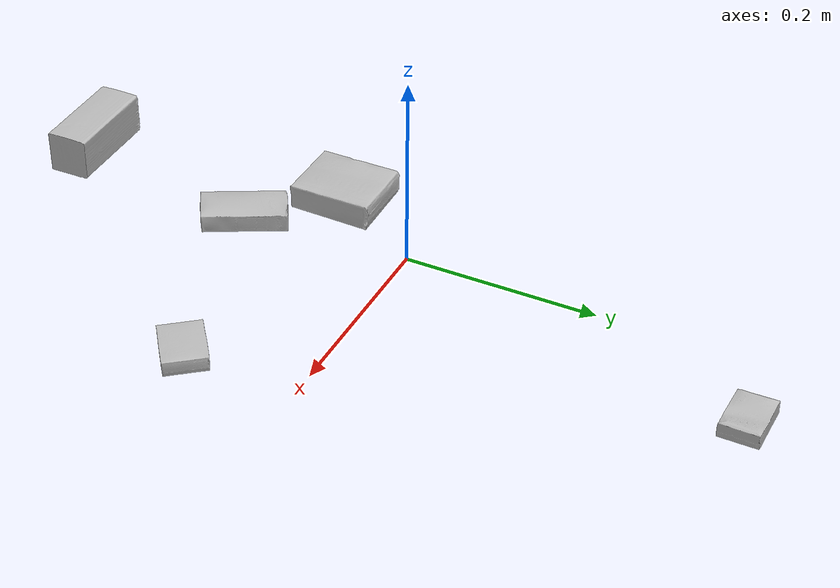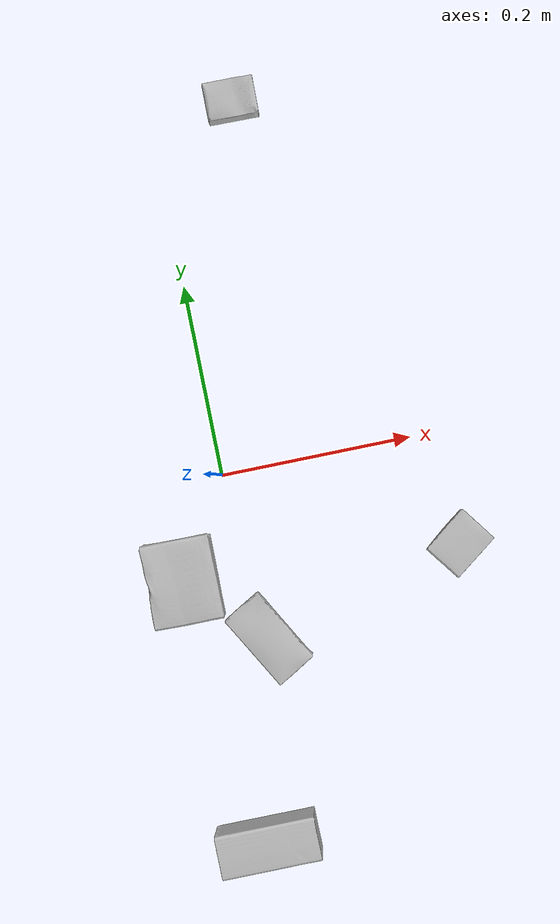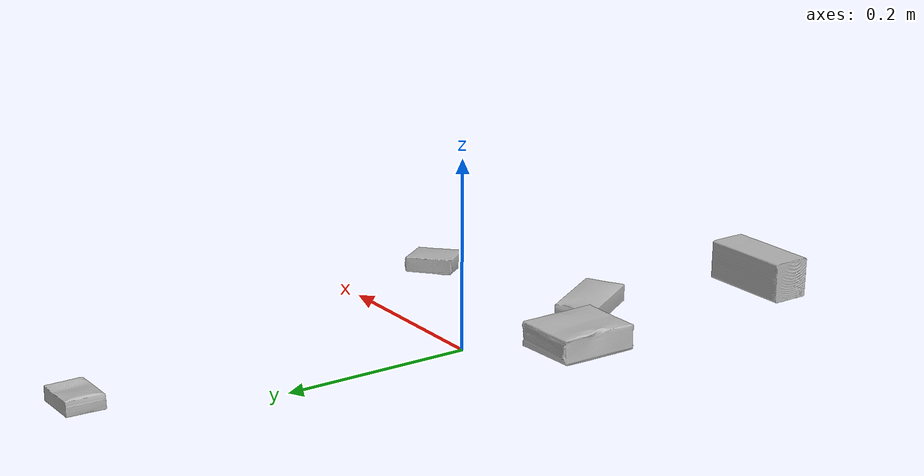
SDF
<sdf version="1.4">
  <world name="default">
    <light name="light1" type="point">
      <pose>0 0 1 0 0 0</pose>
      <diffuse>3 3 3 1</diffuse>
      <specular>3 3 3 1</specular>
    </light>
    <light name="light2" type="point">
      <pose>0 0.5 2 0 0 0</pose>
      <diffuse>1 1 1 1</diffuse>
      <specular>1 1 1 1</specular>
    </light>
    <light name="light3" type="point">
      <pose>0 0.5 2 0 0 0</pose>
      <diffuse>3 3 3 1</diffuse>
      <specular>3 3 3 1</specular>
    </light>
    <scene>
      <ambient>0.7 0.7 0.7</ambient>
    </scene>
    <model name="box1">
      <link name="link_box1">
        <collision name="default">
          <geometry>
            <mesh>
              <uri>model://gelatin_box/collision_meshes/collision.obj</uri>
              <scale>1.0 1.0 1.0</scale>
            </mesh>
          </geometry>
          <surface>
            <friction>
              <ode>
                <mu>0.5</mu>
                <mu2>0.5</mu2>
              </ode>
            </friction>
          <contact>
        <ode>
            <max_vel>0</max_vel>
            <min_depth>0.0001</min_depth>
            <kp>1e8</kp>
        </ode>
    </contact></surface>
        </collision>
        <visual name="default">
          <geometry>
            <mesh>
              <uri>model://gelatin_box/visual_meshes/visual.dae</uri>
              <scale>1.0 1.0 1.0</scale>
            </mesh>
          </geometry>
        </visual>
        <inertial>
          <mass>0.2001359760761261</mass>
          <pose>0.0004319618456065655 0.00011156872642459348 -0.00036403213744051754 -0.0010503718728910522 -0.00475581915504666 0.01644056319729456</pose>
          <inertia>
            <ixx>0.00014127967</ixx>
            <iyy>0.00010091532</iyy>
            <izz>0.00021505913</izz>
            <ixy>0</ixy>
            <ixz>0</ixz>
            <iyz>0</iyz>
          </inertia>
        </inertial>
      </link>
      <pose>-0.060302529484033585 -0.09972728043794632 0.015168317593634129 0.005596914785069489 -0.007303993766821173 3.1288753417315616</pose>
    </model>
    <model name="box2">
      <link name="link_box2">
        <collision name="default">
          <geometry>
            <mesh>
              <uri>model://cracker_box/collision_meshes/collision.obj</uri>
              <scale>0.25 0.25 0.25</scale>
            </mesh>
          </geometry>
          <surface>
            <friction>
              <ode>
                <mu>0.5</mu>
                <mu2>0.5</mu2>
              </ode>
            </friction>
          <contact>
        <ode>
            <max_vel>0</max_vel>
            <min_depth>0.0001</min_depth>
            <kp>1e8</kp>
        </ode>
    </contact></surface>
        </collision>
        <visual name="default">
          <geometry>
            <mesh>
              <uri>model://cracker_box/visual_meshes/visual.dae</uri>
              <scale>0.25 0.25 0.25</scale>
            </mesh>
          </geometry>
        </visual>
        <inertial>
          <mass>0.052757441997528076</mass>
          <pose>0.00023660421720705926 6.358561950037256e-05 -0.0004257383698131889 -0.0003162076882876523 -0.011106491463043667 0.002546795002652857</pose>
          <inertia>
            <ixx>8.38696e-06</ixx>
            <iyy>1.384852e-05</iyy>
            <izz>1.9763109e-05</izz>
            <ixy>0</ixy>
            <ixz>0</ixz>
            <iyz>0</iyz>
          </inertia>
        </inertial>
      </link>
      <pose>0.08626310527324677 0.3792807161808014 0.009120450355112553 -0.011788047246369456 -0.007367243597578537 3.1314158011670323</pose>
    </model>
    <model name="box3">
      <link name="link_box3">
        <collision name="default">
          <geometry>
            <mesh>
              <uri>model://wood_block/collision_meshes/collision.obj</uri>
              <scale>0.5 0.5 0.5</scale>
            </mesh>
          </geometry>
          <surface>
            <friction>
              <ode>
                <mu>0.5</mu>
                <mu2>0.5</mu2>
              </ode>
            </friction>
          <contact>
        <ode>
            <max_vel>0</max_vel>
            <min_depth>0.0001</min_depth>
            <kp>1e8</kp>
        </ode>
    </contact></surface>
        </collision>
        <visual name="default">
          <geometry>
            <mesh>
              <uri>model://wood_block/visual_meshes/visual.dae</uri>
              <scale>0.5 0.5 0.5</scale>
            </mesh>
          </geometry>
        </visual>
        <inertial>
          <mass>0.15567830204963684</mass>
          <pose>-2.9066577553749084e-06 -0.000285404734313488 0.00013204292918089777 -0.052210429644919926 -0.005192696852900695 -0.006861378081336091</pose>
          <inertia>
            <ixx>5.2080282e-05</ixx>
            <iyy>0.00016452163</iyy>
            <izz>0.00016390622</izz>
            <ixy>0</ixy>
            <ixz>0</ixz>
            <iyz>0</iyz>
          </inertia>
        </inertial>
      </link>
      <pose>-0.02582370862364769 -0.377987265586853 0.022629257291555405 -0.005208638517696299 0.005718674345223194 -3.136665503180193</pose>
    </model>
    <model name="box4">
      <link name="link_box4">
        <collision name="default">
          <geometry>
            <mesh>
              <uri>model://pudding_box/collision_meshes/collision.obj</uri>
              <scale>0.5 0.5 0.5</scale>
            </mesh>
          </geometry>
          <surface>
            <friction>
              <ode>
                <mu>0.5</mu>
                <mu2>0.5</mu2>
              </ode>
            </friction>
          <contact>
        <ode>
            <max_vel>0</max_vel>
            <min_depth>0.0001</min_depth>
            <kp>1e8</kp>
        </ode>
    </contact></surface>
        </collision>
        <visual name="default">
          <geometry>
            <mesh>
              <uri>model://pudding_box/visual_meshes/visual.dae</uri>
              <scale>0.5 0.5 0.5</scale>
            </mesh>
          </geometry>
        </visual>
        <inertial>
          <mass>0.0498165600001812</mass>
          <pose>0.00024474109522998333 0.00040339428232982755 -0.0002594413817860186 0.00521310227074754 -0.006603796865596143 0.02007982702575369</pose>
          <inertia>
            <ixx>1.4078764e-05</ixx>
            <iyy>9.472293e-06</iyy>
            <izz>2.0790974e-05</izz>
            <ixy>0</ixy>
            <ixz>0</ixz>
            <iyz>0</iyz>
          </inertia>
        </inertial>
      </link>
      <pose>0.2276022583246231 -0.11784800887107849 0.009862901642918587 0.022348432465095446 -0.01139175332608817 2.207874970951865</pose>
    </model>
    <model name="box5">
      <link name="link_box5">
        <collision name="default">
          <geometry>
            <mesh>
              <uri>model://sugar_box/collision_meshes/collision.obj</uri>
              <scale>0.5 0.5 0.5</scale>
            </mesh>
          </geometry>
          <surface>
            <friction>
              <ode>
                <mu>0.5</mu>
                <mu2>0.5</mu2>
              </ode>
            </friction>
          <contact>
        <ode>
            <max_vel>0</max_vel>
            <min_depth>0.0001</min_depth>
            <kp>1e8</kp>
        </ode>
    </contact></surface>
        </collision>
        <visual name="default">
          <geometry>
            <mesh>
              <uri>model://sugar_box/visual_meshes/visual.dae</uri>
              <scale>0.5 0.5 0.5</scale>
            </mesh>
          </geometry>
        </visual>
        <inertial>
          <mass>0.08508674055337906</mass>
          <pose>0.0005171863595023751 1.924554817378521e-05 -0.00018182402709499002 -0.0004046257768003499 0.0010506634050152445 0.002615378556389427</pose>
          <inertia>
            <ixx>1.7723507e-05</ixx>
            <iyy>5.7286023e-05</iyy>
            <izz>6.85782e-05</izz>
            <ixy>0</ixy>
            <ixz>0</ixz>
            <iyz>0</iyz>
          </inertia>
        </inertial>
      </link>
      <pose>0.014950020238757133 -0.17445310950279236 0.011399303562939167 0.0007756454445452033 -0.023432690027223736 -1.0504423322863978</pose>
    </model>
  <physics type="ode">
      <max_contacts>50</max_contacts>
      <ode>
        <solver>
          <type>quick</type>
          <iters>75</iters>
        </solver>
        <constraints>
          <contact_max_correcting_vel>0</contact_max_correcting_vel>
          <contact_surface_layer>0</contact_surface_layer>
        </constraints>
      </ode>
    </physics></world>
</sdf>
